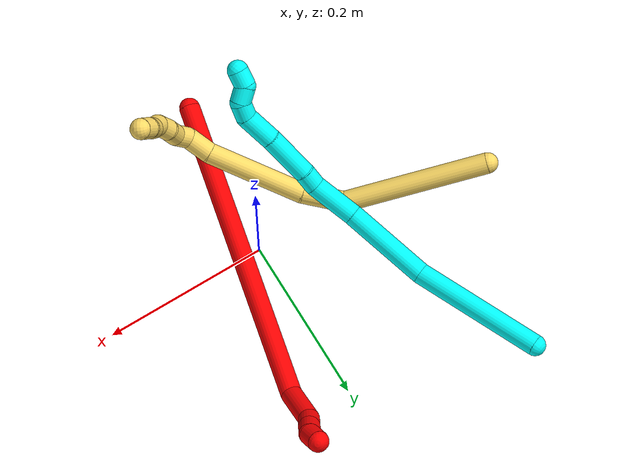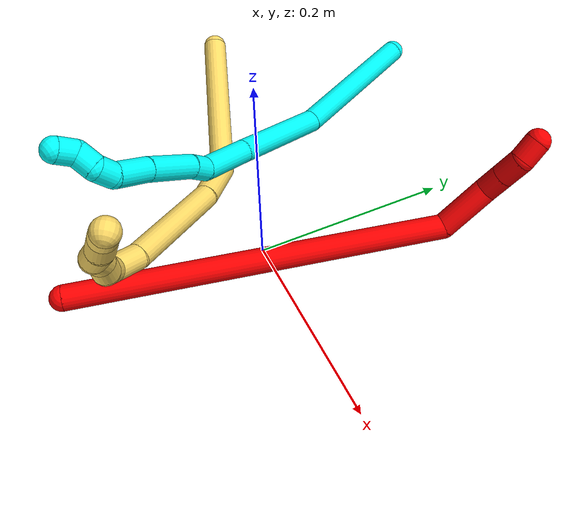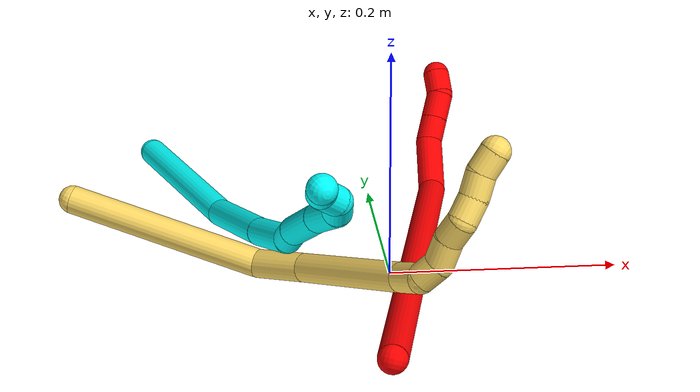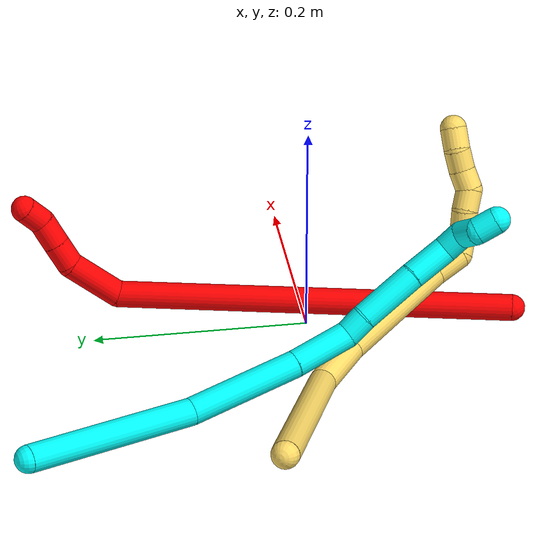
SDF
<sdf version="1.7">
 <world name="default">
  <model name="2">
   <static>0</static>
   <link name="2">
    <collision name="collision-cylinder-e_1_1_4">
     <pose>0.013156 0.167827 0.07993 -1.12632 0.070655 -0.04462</pose>
     <geometry><cylinder><radius>0.0125</radius><length>0.372708</length></cylinder></geometry>
     <surface>
      <friction><ode><mu>1.16</mu><mu2>1.16</mu2><slip1>0</slip1><slip2>0</slip2></ode></friction>
      <contact><ode><kp>1e+06</kp><kd>1</kd><max_vel>0</max_vel><min_depth>0.001</min_depth></ode></contact>
     </surface>
    </collision>
    <visual name="visual-cylinder-e_1_1_4">
     <pose>0.013156 0.167827 0.07993 -1.12632 0.070655 -0.04462</pose>
     <geometry><cylinder><radius>0.0125</radius><length>0.372708</length></cylinder></geometry>
     <material><ambient>1 0 0 1</ambient></material>
    </visual>
    <collision name="collision-cylinder-e_2_4_5">
     <pose>0.020377 0.348355 0.183889 -0.486225 -0.215006 0.053519</pose>
     <geometry><cylinder><radius>0.0125</radius><length>0.055638</length></cylinder></geometry>
     <surface>
      <friction><ode><mu>1.16</mu><mu2>1.16</mu2><slip1>0</slip1><slip2>0</slip2></ode></friction>
      <contact><ode><kp>1e+06</kp><kd>1</kd><max_vel>0</max_vel><min_depth>0.001</min_depth></ode></contact>
     </surface>
    </collision>
    <visual name="visual-cylinder-e_2_4_5">
     <pose>0.020377 0.348355 0.183889 -0.486225 -0.215006 0.053519</pose>
     <geometry><cylinder><radius>0.0125</radius><length>0.055638</length></cylinder></geometry>
     <material><ambient>1 0 0 1</ambient></material>
    </visual>
    <collision name="collision-cylinder-e_3_5_6">
     <pose>0.014413 0.36249 0.219748 -0.120754 -0.002356 0.000142</pose>
     <geometry><cylinder><radius>0.0125</radius><length>0.023833</length></cylinder></geometry>
     <surface>
      <friction><ode><mu>1.16</mu><mu2>1.16</mu2><slip1>0</slip1><slip2>0</slip2></ode></friction>
      <contact><ode><kp>1e+06</kp><kd>1</kd><max_vel>0</max_vel><min_depth>0.001</min_depth></ode></contact>
     </surface>
    </collision>
    <visual name="visual-cylinder-e_3_5_6">
     <pose>0.014413 0.36249 0.219748 -0.120754 -0.002356 0.000142</pose>
     <geometry><cylinder><radius>0.0125</radius><length>0.023833</length></cylinder></geometry>
     <material><ambient>1 0 0 1</ambient></material>
    </visual>
    <collision name="collision-cylinder-e_4_6_7">
     <pose>0.014404 0.365305 0.24414 -0.10936 0.001482 -8.1e-05</pose>
     <geometry><cylinder><radius>0.0125</radius><length>0.025276</length></cylinder></geometry>
     <surface>
      <friction><ode><mu>1.16</mu><mu2>1.16</mu2><slip1>0</slip1><slip2>0</slip2></ode></friction>
      <contact><ode><kp>1e+06</kp><kd>1</kd><max_vel>0</max_vel><min_depth>0.001</min_depth></ode></contact>
     </surface>
    </collision>
    <visual name="visual-cylinder-e_4_6_7">
     <pose>0.014404 0.365305 0.24414 -0.10936 0.001482 -8.1e-05</pose>
     <geometry><cylinder><radius>0.0125</radius><length>0.025276</length></cylinder></geometry>
     <material><ambient>1 0 0 1</ambient></material>
    </visual>
    <collision name="collision-cylinder-e_5_7_2">
     <pose>0.010605 0.370601 0.266558 -0.378264 -0.345557 0.066788</pose>
     <geometry><cylinder><radius>0.0125</radius><length>0.022544</length></cylinder></geometry>
     <surface>
      <friction><ode><mu>1.16</mu><mu2>1.16</mu2><slip1>0</slip1><slip2>0</slip2></ode></friction>
      <contact><ode><kp>1e+06</kp><kd>1</kd><max_vel>0</max_vel><min_depth>0.001</min_depth></ode></contact>
     </surface>
    </collision>
    <visual name="visual-cylinder-e_5_7_2">
     <pose>0.010605 0.370601 0.266558 -0.378264 -0.345557 0.066788</pose>
     <geometry><cylinder><radius>0.0125</radius><length>0.022544</length></cylinder></geometry>
     <material><ambient>1 0 0 1</ambient></material>
    </visual>
    <collision name="collision-sphere-2">
     <pose>0.006786 0.374518 0.276414 0 -0 0</pose>
     <geometry><sphere><radius>0.0125</radius></sphere></geometry>
     <surface>
      <friction><ode><mu>1.16</mu><mu2>1.16</mu2><slip1>0</slip1><slip2>0</slip2></ode></friction>
      <contact><ode><kp>1e+06</kp><kd>1</kd><max_vel>0</max_vel><min_depth>0.001</min_depth></ode></contact>
     </surface>
    </collision>
    <visual name="visual-sphere-2">
     <pose>0.006786 0.374518 0.276414 0 -0 0</pose>
     <geometry><sphere><radius>0.0125</radius></sphere></geometry>
     <material><ambient>1 0 0 1</ambient></material>
    </visual>
    <collision name="collision-sphere-7">
     <pose>0.014423 0.366685 0.256702 0 -0 0</pose>
     <geometry><sphere><radius>0.0125</radius></sphere></geometry>
     <surface>
      <friction><ode><mu>1.16</mu><mu2>1.16</mu2><slip1>0</slip1><slip2>0</slip2></ode></friction>
      <contact><ode><kp>1e+06</kp><kd>1</kd><max_vel>0</max_vel><min_depth>0.001</min_depth></ode></contact>
     </surface>
    </collision>
    <visual name="visual-sphere-7">
     <pose>0.014423 0.366685 0.256702 0 -0 0</pose>
     <geometry><sphere><radius>0.0125</radius></sphere></geometry>
     <material><ambient>1 0 0 1</ambient></material>
    </visual>
    <collision name="collision-sphere-6">
     <pose>0.014385 0.363926 0.231577 0 -0 0</pose>
     <geometry><sphere><radius>0.0125</radius></sphere></geometry>
     <surface>
      <friction><ode><mu>1.16</mu><mu2>1.16</mu2><slip1>0</slip1><slip2>0</slip2></ode></friction>
      <contact><ode><kp>1e+06</kp><kd>1</kd><max_vel>0</max_vel><min_depth>0.001</min_depth></ode></contact>
     </surface>
    </collision>
    <visual name="visual-sphere-6">
     <pose>0.014385 0.363926 0.231577 0 -0 0</pose>
     <geometry><sphere><radius>0.0125</radius></sphere></geometry>
     <material><ambient>1 0 0 1</ambient></material>
    </visual>
    <collision name="collision-sphere-5">
     <pose>0.014441 0.361055 0.207918 0 -0 0</pose>
     <geometry><sphere><radius>0.0125</radius></sphere></geometry>
     <surface>
      <friction><ode><mu>1.16</mu><mu2>1.16</mu2><slip1>0</slip1><slip2>0</slip2></ode></friction>
      <contact><ode><kp>1e+06</kp><kd>1</kd><max_vel>0</max_vel><min_depth>0.001</min_depth></ode></contact>
     </surface>
    </collision>
    <visual name="visual-sphere-5">
     <pose>0.014441 0.361055 0.207918 0 -0 0</pose>
     <geometry><sphere><radius>0.0125</radius></sphere></geometry>
     <material><ambient>1 0 0 1</ambient></material>
    </visual>
    <collision name="collision-sphere-1">
     <geometry><sphere><radius>0.0125</radius></sphere></geometry>
     <surface>
      <friction><ode><mu>1.16</mu><mu2>1.16</mu2><slip1>0</slip1><slip2>0</slip2></ode></friction>
      <contact><ode><kp>1e+06</kp><kd>1</kd><max_vel>0</max_vel><min_depth>0.001</min_depth></ode></contact>
     </surface>
    </collision>
    <visual name="visual-sphere-1">
     <geometry><sphere><radius>0.0125</radius></sphere></geometry>
     <material><ambient>1 0 0 1</ambient></material>
    </visual>
    <collision name="collision-sphere-4">
     <pose>0.026312 0.335654 0.159861 0 -0 0</pose>
     <geometry><sphere><radius>0.0125</radius></sphere></geometry>
     <surface>
      <friction><ode><mu>1.16</mu><mu2>1.16</mu2><slip1>0</slip1><slip2>0</slip2></ode></friction>
      <contact><ode><kp>1e+06</kp><kd>1</kd><max_vel>0</max_vel><min_depth>0.001</min_depth></ode></contact>
     </surface>
    </collision>
    <visual name="visual-sphere-4">
     <pose>0.026312 0.335654 0.159861 0 -0 0</pose>
     <geometry><sphere><radius>0.0125</radius></sphere></geometry>
     <material><ambient>1 0 0 1</ambient></material>
    </visual>
    <inertial>
     <pose>0.013967 0.21632 0.114879 0 -0 0</pose>
     <mass>0.5</mass>
     <inertia>
      <ixx>0.004145</ixx>
      <ixy>0</ixy>
      <ixz>0</ixz>
      <iyy>0.00173</iyy>
      <iyz>0</iyz>
      <izz>-0.004187</izz>
     </inertia>
    </inertial>
   </link>
   <pose>-0.019035 -0.1926 0.011499 -0.427066 0.24132 -0.139647</pose>
  </model>
  <model name="3">
   <static>0</static>
   <link name="3">
    <collision name="collision-cylinder-e_1_1_4">
     <pose>0.000249 0.009169 -0.079318 -3.0265 0.003118 -0.054104</pose>
     <geometry><cylinder><radius>0.0125</radius><length>0.159693</length></cylinder></geometry>
     <surface>
      <friction><ode><mu>1.16</mu><mu2>1.16</mu2><slip1>0</slip1><slip2>0</slip2></ode></friction>
      <contact><ode><kp>1e+06</kp><kd>1</kd><max_vel>0</max_vel><min_depth>0.001</min_depth></ode></contact>
     </surface>
    </collision>
    <visual name="visual-cylinder-e_1_1_4">
     <pose>0.000249 0.009169 -0.079318 -3.0265 0.003118 -0.054104</pose>
     <geometry><cylinder><radius>0.0125</radius><length>0.159693</length></cylinder></geometry>
     <material><ambient>0.003922 1 0.996078 1</ambient></material>
    </visual>
    <collision name="collision-cylinder-e_2_4_5">
     <pose>0.012031 0.016451 -0.209741 3.10468 0.221813 2.8131</pose>
     <geometry><cylinder><radius>0.0125</radius><length>0.104848</length></cylinder></geometry>
     <surface>
      <friction><ode><mu>1.16</mu><mu2>1.16</mu2><slip1>0</slip1><slip2>0</slip2></ode></friction>
      <contact><ode><kp>1e+06</kp><kd>1</kd><max_vel>0</max_vel><min_depth>0.001</min_depth></ode></contact>
     </surface>
    </collision>
    <visual name="visual-cylinder-e_2_4_5">
     <pose>0.012031 0.016451 -0.209741 3.10468 0.221813 2.8131</pose>
     <geometry><cylinder><radius>0.0125</radius><length>0.104848</length></cylinder></geometry>
     <material><ambient>0.003922 1 0.996078 1</ambient></material>
    </visual>
    <collision name="collision-cylinder-e_3_5_6">
     <pose>0.031515 0.015057 -0.287845 -3.12335 0.286342 -3.01518</pose>
     <geometry><cylinder><radius>0.0125</radius><length>0.056301</length></cylinder></geometry>
     <surface>
      <friction><ode><mu>1.16</mu><mu2>1.16</mu2><slip1>0</slip1><slip2>0</slip2></ode></friction>
      <contact><ode><kp>1e+06</kp><kd>1</kd><max_vel>0</max_vel><min_depth>0.001</min_depth></ode></contact>
     </surface>
    </collision>
    <visual name="visual-cylinder-e_3_5_6">
     <pose>0.031515 0.015057 -0.287845 -3.12335 0.286342 -3.01518</pose>
     <geometry><cylinder><radius>0.0125</radius><length>0.056301</length></cylinder></geometry>
     <material><ambient>0.003922 1 0.996078 1</ambient></material>
    </visual>
    <collision name="collision-cylinder-e_4_6_7">
     <pose>0.046554 0.013446 -0.322991 2.88891 0.700115 2.47197</pose>
     <geometry><cylinder><radius>0.0125</radius><length>0.022003</length></cylinder></geometry>
     <surface>
      <friction><ode><mu>1.16</mu><mu2>1.16</mu2><slip1>0</slip1><slip2>0</slip2></ode></friction>
      <contact><ode><kp>1e+06</kp><kd>1</kd><max_vel>0</max_vel><min_depth>0.001</min_depth></ode></contact>
     </surface>
    </collision>
    <visual name="visual-cylinder-e_4_6_7">
     <pose>0.046554 0.013446 -0.322991 2.88891 0.700115 2.47197</pose>
     <geometry><cylinder><radius>0.0125</radius><length>0.022003</length></cylinder></geometry>
     <material><ambient>0.003922 1 0.996078 1</ambient></material>
    </visual>
    <collision name="collision-cylinder-e_5_7_8">
     <pose>0.069086 0.008302 -0.355095 3.01534 0.568948 2.7158</pose>
     <geometry><cylinder><radius>0.0125</radius><length>0.057331</length></cylinder></geometry>
     <surface>
      <friction><ode><mu>1.16</mu><mu2>1.16</mu2><slip1>0</slip1><slip2>0</slip2></ode></friction>
      <contact><ode><kp>1e+06</kp><kd>1</kd><max_vel>0</max_vel><min_depth>0.001</min_depth></ode></contact>
     </surface>
    </collision>
    <visual name="visual-cylinder-e_5_7_8">
     <pose>0.069086 0.008302 -0.355095 3.01534 0.568948 2.7158</pose>
     <geometry><cylinder><radius>0.0125</radius><length>0.057331</length></cylinder></geometry>
     <material><ambient>0.003922 1 0.996078 1</ambient></material>
    </visual>
    <collision name="collision-cylinder-e_6_8_9">
     <pose>0.093943 0.004219 -0.396174 3.08082 0.501915 2.90557</pose>
     <geometry><cylinder><radius>0.0125</radius><length>0.039132</length></cylinder></geometry>
     <surface>
      <friction><ode><mu>1.16</mu><mu2>1.16</mu2><slip1>0</slip1><slip2>0</slip2></ode></friction>
      <contact><ode><kp>1e+06</kp><kd>1</kd><max_vel>0</max_vel><min_depth>0.001</min_depth></ode></contact>
     </surface>
    </collision>
    <visual name="visual-cylinder-e_6_8_9">
     <pose>0.093943 0.004219 -0.396174 3.08082 0.501915 2.90557</pose>
     <geometry><cylinder><radius>0.0125</radius><length>0.039132</length></cylinder></geometry>
     <material><ambient>0.003922 1 0.996078 1</ambient></material>
    </visual>
    <collision name="collision-cylinder-e_7_9_10">
     <pose>0.109996 -0.001171 -0.419538 2.53317 0.717575 1.74759</pose>
     <geometry><cylinder><radius>0.0125</radius><length>0.020196</length></cylinder></geometry>
     <surface>
      <friction><ode><mu>1.16</mu><mu2>1.16</mu2><slip1>0</slip1><slip2>0</slip2></ode></friction>
      <contact><ode><kp>1e+06</kp><kd>1</kd><max_vel>0</max_vel><min_depth>0.001</min_depth></ode></contact>
     </surface>
    </collision>
    <visual name="visual-cylinder-e_7_9_10">
     <pose>0.109996 -0.001171 -0.419538 2.53317 0.717575 1.74759</pose>
     <geometry><cylinder><radius>0.0125</radius><length>0.020196</length></cylinder></geometry>
     <material><ambient>0.003922 1 0.996078 1</ambient></material>
    </visual>
    <collision name="collision-cylinder-e_8_10_11">
     <pose>0.119908 -0.014782 -0.428681 1.87429 0.325137 0.439267</pose>
     <geometry><cylinder><radius>0.0125</radius><length>0.020485</length></cylinder></geometry>
     <surface>
      <friction><ode><mu>1.16</mu><mu2>1.16</mu2><slip1>0</slip1><slip2>0</slip2></ode></friction>
      <contact><ode><kp>1e+06</kp><kd>1</kd><max_vel>0</max_vel><min_depth>0.001</min_depth></ode></contact>
     </surface>
    </collision>
    <visual name="visual-cylinder-e_8_10_11">
     <pose>0.119908 -0.014782 -0.428681 1.87429 0.325137 0.439267</pose>
     <geometry><cylinder><radius>0.0125</radius><length>0.020485</length></cylinder></geometry>
     <material><ambient>0.003922 1 0.996078 1</ambient></material>
    </visual>
    <collision name="collision-cylinder-e_9_11_2">
     <pose>0.127664 -0.028196 -0.439504 2.65885 0.464716 1.53129</pose>
     <geometry><cylinder><radius>0.0125</radius><length>0.020011</length></cylinder></geometry>
     <surface>
      <friction><ode><mu>1.16</mu><mu2>1.16</mu2><slip1>0</slip1><slip2>0</slip2></ode></friction>
      <contact><ode><kp>1e+06</kp><kd>1</kd><max_vel>0</max_vel><min_depth>0.001</min_depth></ode></contact>
     </surface>
    </collision>
    <visual name="visual-cylinder-e_9_11_2">
     <pose>0.127664 -0.028196 -0.439504 2.65885 0.464716 1.53129</pose>
     <geometry><cylinder><radius>0.0125</radius><length>0.020011</length></cylinder></geometry>
     <material><ambient>0.003922 1 0.996078 1</ambient></material>
    </visual>
    <collision name="collision-sphere-2">
     <pose>0.132148 -0.032348 -0.447426 0 -0 0</pose>
     <geometry><sphere><radius>0.0125</radius></sphere></geometry>
     <surface>
      <friction><ode><mu>1.16</mu><mu2>1.16</mu2><slip1>0</slip1><slip2>0</slip2></ode></friction>
      <contact><ode><kp>1e+06</kp><kd>1</kd><max_vel>0</max_vel><min_depth>0.001</min_depth></ode></contact>
     </surface>
    </collision>
    <visual name="visual-sphere-2">
     <pose>0.132148 -0.032348 -0.447426 0 -0 0</pose>
     <geometry><sphere><radius>0.0125</radius></sphere></geometry>
     <material><ambient>0.003922 1 0.996078 1</ambient></material>
    </visual>
    <collision name="collision-sphere-11">
     <pose>0.12318 -0.024044 -0.431581 0 -0 0</pose>
     <geometry><sphere><radius>0.0125</radius></sphere></geometry>
     <surface>
      <friction><ode><mu>1.16</mu><mu2>1.16</mu2><slip1>0</slip1><slip2>0</slip2></ode></friction>
      <contact><ode><kp>1e+06</kp><kd>1</kd><max_vel>0</max_vel><min_depth>0.001</min_depth></ode></contact>
     </surface>
    </collision>
    <visual name="visual-sphere-11">
     <pose>0.12318 -0.024044 -0.431581 0 -0 0</pose>
     <geometry><sphere><radius>0.0125</radius></sphere></geometry>
     <material><ambient>0.003922 1 0.996078 1</ambient></material>
    </visual>
    <collision name="collision-sphere-10">
     <pose>0.116636 -0.005519 -0.42578 0 -0 0</pose>
     <geometry><sphere><radius>0.0125</radius></sphere></geometry>
     <surface>
      <friction><ode><mu>1.16</mu><mu2>1.16</mu2><slip1>0</slip1><slip2>0</slip2></ode></friction>
      <contact><ode><kp>1e+06</kp><kd>1</kd><max_vel>0</max_vel><min_depth>0.001</min_depth></ode></contact>
     </surface>
    </collision>
    <visual name="visual-sphere-10">
     <pose>0.116636 -0.005519 -0.42578 0 -0 0</pose>
     <geometry><sphere><radius>0.0125</radius></sphere></geometry>
     <material><ambient>0.003922 1 0.996078 1</ambient></material>
    </visual>
    <collision name="collision-sphere-9">
     <pose>0.103356 0.003178 -0.413295 0 -0 0</pose>
     <geometry><sphere><radius>0.0125</radius></sphere></geometry>
     <surface>
      <friction><ode><mu>1.16</mu><mu2>1.16</mu2><slip1>0</slip1><slip2>0</slip2></ode></friction>
      <contact><ode><kp>1e+06</kp><kd>1</kd><max_vel>0</max_vel><min_depth>0.001</min_depth></ode></contact>
     </surface>
    </collision>
    <visual name="visual-sphere-9">
     <pose>0.103356 0.003178 -0.413295 0 -0 0</pose>
     <geometry><sphere><radius>0.0125</radius></sphere></geometry>
     <material><ambient>0.003922 1 0.996078 1</ambient></material>
    </visual>
    <collision name="collision-sphere-4">
     <pose>0.000498 0.018339 -0.158636 0 -0 0</pose>
     <geometry><sphere><radius>0.0125</radius></sphere></geometry>
     <surface>
      <friction><ode><mu>1.16</mu><mu2>1.16</mu2><slip1>0</slip1><slip2>0</slip2></ode></friction>
      <contact><ode><kp>1e+06</kp><kd>1</kd><max_vel>0</max_vel><min_depth>0.001</min_depth></ode></contact>
     </surface>
    </collision>
    <visual name="visual-sphere-4">
     <pose>0.000498 0.018339 -0.158636 0 -0 0</pose>
     <geometry><sphere><radius>0.0125</radius></sphere></geometry>
     <material><ambient>0.003922 1 0.996078 1</ambient></material>
    </visual>
    <collision name="collision-sphere-1">
     <geometry><sphere><radius>0.0125</radius></sphere></geometry>
     <surface>
      <friction><ode><mu>1.16</mu><mu2>1.16</mu2><slip1>0</slip1><slip2>0</slip2></ode></friction>
      <contact><ode><kp>1e+06</kp><kd>1</kd><max_vel>0</max_vel><min_depth>0.001</min_depth></ode></contact>
     </surface>
    </collision>
    <visual name="visual-sphere-1">
     <geometry><sphere><radius>0.0125</radius></sphere></geometry>
     <material><ambient>0.003922 1 0.996078 1</ambient></material>
    </visual>
    <collision name="collision-sphere-8">
     <pose>0.08453 0.005261 -0.379053 0 -0 0</pose>
     <geometry><sphere><radius>0.0125</radius></sphere></geometry>
     <surface>
      <friction><ode><mu>1.16</mu><mu2>1.16</mu2><slip1>0</slip1><slip2>0</slip2></ode></friction>
      <contact><ode><kp>1e+06</kp><kd>1</kd><max_vel>0</max_vel><min_depth>0.001</min_depth></ode></contact>
     </surface>
    </collision>
    <visual name="visual-sphere-8">
     <pose>0.08453 0.005261 -0.379053 0 -0 0</pose>
     <geometry><sphere><radius>0.0125</radius></sphere></geometry>
     <material><ambient>0.003922 1 0.996078 1</ambient></material>
    </visual>
    <collision name="collision-sphere-5">
     <pose>0.023564 0.014564 -0.260845 0 -0 0</pose>
     <geometry><sphere><radius>0.0125</radius></sphere></geometry>
     <surface>
      <friction><ode><mu>1.16</mu><mu2>1.16</mu2><slip1>0</slip1><slip2>0</slip2></ode></friction>
      <contact><ode><kp>1e+06</kp><kd>1</kd><max_vel>0</max_vel><min_depth>0.001</min_depth></ode></contact>
     </surface>
    </collision>
    <visual name="visual-sphere-5">
     <pose>0.023564 0.014564 -0.260845 0 -0 0</pose>
     <geometry><sphere><radius>0.0125</radius></sphere></geometry>
     <material><ambient>0.003922 1 0.996078 1</ambient></material>
    </visual>
    <collision name="collision-sphere-6">
     <pose>0.039466 0.01555 -0.314845 0 -0 0</pose>
     <geometry><sphere><radius>0.0125</radius></sphere></geometry>
     <surface>
      <friction><ode><mu>1.16</mu><mu2>1.16</mu2><slip1>0</slip1><slip2>0</slip2></ode></friction>
      <contact><ode><kp>1e+06</kp><kd>1</kd><max_vel>0</max_vel><min_depth>0.001</min_depth></ode></contact>
     </surface>
    </collision>
    <visual name="visual-sphere-6">
     <pose>0.039466 0.01555 -0.314845 0 -0 0</pose>
     <geometry><sphere><radius>0.0125</radius></sphere></geometry>
     <material><ambient>0.003922 1 0.996078 1</ambient></material>
    </visual>
    <collision name="collision-sphere-7">
     <pose>0.053643 0.011343 -0.331138 0 -0 0</pose>
     <geometry><sphere><radius>0.0125</radius></sphere></geometry>
     <surface>
      <friction><ode><mu>1.16</mu><mu2>1.16</mu2><slip1>0</slip1><slip2>0</slip2></ode></friction>
      <contact><ode><kp>1e+06</kp><kd>1</kd><max_vel>0</max_vel><min_depth>0.001</min_depth></ode></contact>
     </surface>
    </collision>
    <visual name="visual-sphere-7">
     <pose>0.053643 0.011343 -0.331138 0 -0 0</pose>
     <geometry><sphere><radius>0.0125</radius></sphere></geometry>
     <material><ambient>0.003922 1 0.996078 1</ambient></material>
    </visual>
    <inertial>
     <pose>0.037939 0.008166 -0.239761 0 -0 0</pose>
     <mass>0.5</mass>
     <inertia>
      <ixx>0.00025</ixx>
      <ixy>0</ixy>
      <ixz>0</ixz>
      <iyy>-0.000186</iyy>
      <iyz>0</iyz>
      <izz>-0.00011</izz>
     </inertia>
    </inertial>
   </link>
   <pose>-0.20976 0.27201 0.024868 -1.39141 -1.30467 0.132995</pose>
  </model>
  <model name="5">
   <static>0</static>
   <link name="5">
    <collision name="collision-cylinder-e_1_1_4">
     <pose>0.015955 0.001708 0.086602 -0.019724 0.182151 -0.001801</pose>
     <geometry><cylinder><radius>0.0125</radius><length>0.176151</length></cylinder></geometry>
     <surface>
      <friction><ode><mu>1.16</mu><mu2>1.16</mu2><slip1>0</slip1><slip2>0</slip2></ode></friction>
      <contact><ode><kp>1e+06</kp><kd>1</kd><max_vel>0</max_vel><min_depth>0.001</min_depth></ode></contact>
     </surface>
    </collision>
    <visual name="visual-cylinder-e_1_1_4">
     <pose>0.015955 0.001708 0.086602 -0.019724 0.182151 -0.001801</pose>
     <geometry><cylinder><radius>0.0125</radius><length>0.176151</length></cylinder></geometry>
     <material><ambient>1 0.858824 0.4 1</ambient></material>
    </visual>
    <collision name="collision-cylinder-e_2_4_5">
     <pose>0.028529 0.01471 0.195849 -0.462599 -0.132763 0.031311</pose>
     <geometry><cylinder><radius>0.0125</radius><length>0.051061</length></cylinder></geometry>
     <surface>
      <friction><ode><mu>1.16</mu><mu2>1.16</mu2><slip1>0</slip1><slip2>0</slip2></ode></friction>
      <contact><ode><kp>1e+06</kp><kd>1</kd><max_vel>0</max_vel><min_depth>0.001</min_depth></ode></contact>
     </surface>
    </collision>
    <visual name="visual-cylinder-e_2_4_5">
     <pose>0.028529 0.01471 0.195849 -0.462599 -0.132763 0.031311</pose>
     <geometry><cylinder><radius>0.0125</radius><length>0.051061</length></cylinder></geometry>
     <material><ambient>1 0.858824 0.4 1</ambient></material>
    </visual>
    <collision name="collision-cylinder-e_3_5_6">
     <pose>0.006942 0.055995 0.266571 -0.557768 -0.310919 0.089695</pose>
     <geometry><cylinder><radius>0.0125</radius><length>0.119035</length></cylinder></geometry>
     <surface>
      <friction><ode><mu>1.16</mu><mu2>1.16</mu2><slip1>0</slip1><slip2>0</slip2></ode></friction>
      <contact><ode><kp>1e+06</kp><kd>1</kd><max_vel>0</max_vel><min_depth>0.001</min_depth></ode></contact>
     </surface>
    </collision>
    <visual name="visual-cylinder-e_3_5_6">
     <pose>0.006942 0.055995 0.266571 -0.557768 -0.310919 0.089695</pose>
     <geometry><cylinder><radius>0.0125</radius><length>0.119035</length></cylinder></geometry>
     <material><ambient>1 0.858824 0.4 1</ambient></material>
    </visual>
    <collision name="collision-cylinder-e_4_6_7">
     <pose>-0.018433 0.094658 0.324942 -0.69995 -0.48921 0.181709</pose>
     <geometry><cylinder><radius>0.0125</radius><length>0.030497</length></cylinder></geometry>
     <surface>
      <friction><ode><mu>1.16</mu><mu2>1.16</mu2><slip1>0</slip1><slip2>0</slip2></ode></friction>
      <contact><ode><kp>1e+06</kp><kd>1</kd><max_vel>0</max_vel><min_depth>0.001</min_depth></ode></contact>
     </surface>
    </collision>
    <visual name="visual-cylinder-e_4_6_7">
     <pose>-0.018433 0.094658 0.324942 -0.69995 -0.48921 0.181709</pose>
     <geometry><cylinder><radius>0.0125</radius><length>0.030497</length></cylinder></geometry>
     <material><ambient>1 0.858824 0.4 1</ambient></material>
    </visual>
    <collision name="collision-cylinder-e_5_7_8">
     <pose>-0.024005 0.112231 0.340126 -1.06862 0.155639 -0.092216</pose>
     <geometry><cylinder><radius>0.0125</radius><length>0.020561</length></cylinder></geometry>
     <surface>
      <friction><ode><mu>1.16</mu><mu2>1.16</mu2><slip1>0</slip1><slip2>0</slip2></ode></friction>
      <contact><ode><kp>1e+06</kp><kd>1</kd><max_vel>0</max_vel><min_depth>0.001</min_depth></ode></contact>
     </surface>
    </collision>
    <visual name="visual-cylinder-e_5_7_8">
     <pose>-0.024005 0.112231 0.340126 -1.06862 0.155639 -0.092216</pose>
     <geometry><cylinder><radius>0.0125</radius><length>0.020561</length></cylinder></geometry>
     <material><ambient>1 0.858824 0.4 1</ambient></material>
    </visual>
    <collision name="collision-cylinder-e_6_8_9">
     <pose>-0.020757 0.132322 0.34552 -1.52563 0.146622 -0.140167</pose>
     <geometry><cylinder><radius>0.0125</radius><length>0.022644</length></cylinder></geometry>
     <surface>
      <friction><ode><mu>1.16</mu><mu2>1.16</mu2><slip1>0</slip1><slip2>0</slip2></ode></friction>
      <contact><ode><kp>1e+06</kp><kd>1</kd><max_vel>0</max_vel><min_depth>0.001</min_depth></ode></contact>
     </surface>
    </collision>
    <visual name="visual-cylinder-e_6_8_9">
     <pose>-0.020757 0.132322 0.34552 -1.52563 0.146622 -0.140167</pose>
     <geometry><cylinder><radius>0.0125</radius><length>0.022644</length></cylinder></geometry>
     <material><ambient>1 0.858824 0.4 1</ambient></material>
    </visual>
    <collision name="collision-cylinder-e_7_9_10">
     <pose>-0.018248 0.153067 0.348856 -1.28286 0.085612 -0.06395</pose>
     <geometry><cylinder><radius>0.0125</radius><length>0.020006</length></cylinder></geometry>
     <surface>
      <friction><ode><mu>1.16</mu><mu2>1.16</mu2><slip1>0</slip1><slip2>0</slip2></ode></friction>
      <contact><ode><kp>1e+06</kp><kd>1</kd><max_vel>0</max_vel><min_depth>0.001</min_depth></ode></contact>
     </surface>
    </collision>
    <visual name="visual-cylinder-e_7_9_10">
     <pose>-0.018248 0.153067 0.348856 -1.28286 0.085612 -0.06395</pose>
     <geometry><cylinder><radius>0.0125</radius><length>0.020006</length></cylinder></geometry>
     <material><ambient>1 0.858824 0.4 1</ambient></material>
    </visual>
    <collision name="collision-cylinder-e_8_10_11">
     <pose>-0.011757 0.170903 0.351835 -1.55283 0.597487 -0.587456</pose>
     <geometry><cylinder><radius>0.0125</radius><length>0.020033</length></cylinder></geometry>
     <surface>
      <friction><ode><mu>1.16</mu><mu2>1.16</mu2><slip1>0</slip1><slip2>0</slip2></ode></friction>
      <contact><ode><kp>1e+06</kp><kd>1</kd><max_vel>0</max_vel><min_depth>0.001</min_depth></ode></contact>
     </surface>
    </collision>
    <visual name="visual-cylinder-e_8_10_11">
     <pose>-0.011757 0.170903 0.351835 -1.55283 0.597487 -0.587456</pose>
     <geometry><cylinder><radius>0.0125</radius><length>0.020033</length></cylinder></geometry>
     <material><ambient>1 0.858824 0.4 1</ambient></material>
    </visual>
    <collision name="collision-cylinder-e_9_11_12">
     <pose>-0.001977 0.188205 0.350795 -1.70174 0.427473 -0.48527</pose>
     <geometry><cylinder><radius>0.0125</radius><length>0.020001</length></cylinder></geometry>
     <surface>
      <friction><ode><mu>1.16</mu><mu2>1.16</mu2><slip1>0</slip1><slip2>0</slip2></ode></friction>
      <contact><ode><kp>1e+06</kp><kd>1</kd><max_vel>0</max_vel><min_depth>0.001</min_depth></ode></contact>
     </surface>
    </collision>
    <visual name="visual-cylinder-e_9_11_12">
     <pose>-0.001977 0.188205 0.350795 -1.70174 0.427473 -0.48527</pose>
     <geometry><cylinder><radius>0.0125</radius><length>0.020001</length></cylinder></geometry>
     <material><ambient>1 0.858824 0.4 1</ambient></material>
    </visual>
    <collision name="collision-cylinder-e_10_12_2">
     <pose>0.006501 0.206087 0.351297 -1.38235 0.447725 -0.37236</pose>
     <geometry><cylinder><radius>0.0125</radius><length>0.020012</length></cylinder></geometry>
     <surface>
      <friction><ode><mu>1.16</mu><mu2>1.16</mu2><slip1>0</slip1><slip2>0</slip2></ode></friction>
      <contact><ode><kp>1e+06</kp><kd>1</kd><max_vel>0</max_vel><min_depth>0.001</min_depth></ode></contact>
     </surface>
    </collision>
    <visual name="visual-cylinder-e_10_12_2">
     <pose>0.006501 0.206087 0.351297 -1.38235 0.447725 -0.37236</pose>
     <geometry><cylinder><radius>0.0125</radius><length>0.020012</length></cylinder></geometry>
     <material><ambient>1 0.858824 0.4 1</ambient></material>
    </visual>
    <collision name="collision-sphere-2">
     <pose>0.010832 0.214947 0.352986 0 -0 0</pose>
     <geometry><sphere><radius>0.0125</radius></sphere></geometry>
     <surface>
      <friction><ode><mu>1.16</mu><mu2>1.16</mu2><slip1>0</slip1><slip2>0</slip2></ode></friction>
      <contact><ode><kp>1e+06</kp><kd>1</kd><max_vel>0</max_vel><min_depth>0.001</min_depth></ode></contact>
     </surface>
    </collision>
    <visual name="visual-sphere-2">
     <pose>0.010832 0.214947 0.352986 0 -0 0</pose>
     <geometry><sphere><radius>0.0125</radius></sphere></geometry>
     <material><ambient>1 0.858824 0.4 1</ambient></material>
    </visual>
    <collision name="collision-sphere-12">
     <pose>0.002169 0.197228 0.349607 0 -0 0</pose>
     <geometry><sphere><radius>0.0125</radius></sphere></geometry>
     <surface>
      <friction><ode><mu>1.16</mu><mu2>1.16</mu2><slip1>0</slip1><slip2>0</slip2></ode></friction>
      <contact><ode><kp>1e+06</kp><kd>1</kd><max_vel>0</max_vel><min_depth>0.001</min_depth></ode></contact>
     </surface>
    </collision>
    <visual name="visual-sphere-12">
     <pose>0.002169 0.197228 0.349607 0 -0 0</pose>
     <geometry><sphere><radius>0.0125</radius></sphere></geometry>
     <material><ambient>1 0.858824 0.4 1</ambient></material>
    </visual>
    <collision name="collision-sphere-11">
     <pose>-0.006123 0.179183 0.351984 0 -0 0</pose>
     <geometry><sphere><radius>0.0125</radius></sphere></geometry>
     <surface>
      <friction><ode><mu>1.16</mu><mu2>1.16</mu2><slip1>0</slip1><slip2>0</slip2></ode></friction>
      <contact><ode><kp>1e+06</kp><kd>1</kd><max_vel>0</max_vel><min_depth>0.001</min_depth></ode></contact>
     </surface>
    </collision>
    <visual name="visual-sphere-11">
     <pose>-0.006123 0.179183 0.351984 0 -0 0</pose>
     <geometry><sphere><radius>0.0125</radius></sphere></geometry>
     <material><ambient>1 0.858824 0.4 1</ambient></material>
    </visual>
    <collision name="collision-sphere-10">
     <pose>-0.017392 0.162623 0.351686 0 -0 0</pose>
     <geometry><sphere><radius>0.0125</radius></sphere></geometry>
     <surface>
      <friction><ode><mu>1.16</mu><mu2>1.16</mu2><slip1>0</slip1><slip2>0</slip2></ode></friction>
      <contact><ode><kp>1e+06</kp><kd>1</kd><max_vel>0</max_vel><min_depth>0.001</min_depth></ode></contact>
     </surface>
    </collision>
    <visual name="visual-sphere-10">
     <pose>-0.017392 0.162623 0.351686 0 -0 0</pose>
     <geometry><sphere><radius>0.0125</radius></sphere></geometry>
     <material><ambient>1 0.858824 0.4 1</ambient></material>
    </visual>
    <collision name="collision-sphere-9">
     <pose>-0.019103 0.143511 0.346026 0 -0 0</pose>
     <geometry><sphere><radius>0.0125</radius></sphere></geometry>
     <surface>
      <friction><ode><mu>1.16</mu><mu2>1.16</mu2><slip1>0</slip1><slip2>0</slip2></ode></friction>
      <contact><ode><kp>1e+06</kp><kd>1</kd><max_vel>0</max_vel><min_depth>0.001</min_depth></ode></contact>
     </surface>
    </collision>
    <visual name="visual-sphere-9">
     <pose>-0.019103 0.143511 0.346026 0 -0 0</pose>
     <geometry><sphere><radius>0.0125</radius></sphere></geometry>
     <material><ambient>1 0.858824 0.4 1</ambient></material>
    </visual>
    <collision name="collision-sphere-4">
     <pose>0.031909 0.003417 0.173203 0 -0 0</pose>
     <geometry><sphere><radius>0.0125</radius></sphere></geometry>
     <surface>
      <friction><ode><mu>1.16</mu><mu2>1.16</mu2><slip1>0</slip1><slip2>0</slip2></ode></friction>
      <contact><ode><kp>1e+06</kp><kd>1</kd><max_vel>0</max_vel><min_depth>0.001</min_depth></ode></contact>
     </surface>
    </collision>
    <visual name="visual-sphere-4">
     <pose>0.031909 0.003417 0.173203 0 -0 0</pose>
     <geometry><sphere><radius>0.0125</radius></sphere></geometry>
     <material><ambient>1 0.858824 0.4 1</ambient></material>
    </visual>
    <collision name="collision-sphere-1">
     <geometry><sphere><radius>0.0125</radius></sphere></geometry>
     <surface>
      <friction><ode><mu>1.16</mu><mu2>1.16</mu2><slip1>0</slip1><slip2>0</slip2></ode></friction>
      <contact><ode><kp>1e+06</kp><kd>1</kd><max_vel>0</max_vel><min_depth>0.001</min_depth></ode></contact>
     </surface>
    </collision>
    <visual name="visual-sphere-1">
     <geometry><sphere><radius>0.0125</radius></sphere></geometry>
     <material><ambient>1 0.858824 0.4 1</ambient></material>
    </visual>
    <collision name="collision-sphere-8">
     <pose>-0.022411 0.121133 0.345014 0 -0 0</pose>
     <geometry><sphere><radius>0.0125</radius></sphere></geometry>
     <surface>
      <friction><ode><mu>1.16</mu><mu2>1.16</mu2><slip1>0</slip1><slip2>0</slip2></ode></friction>
      <contact><ode><kp>1e+06</kp><kd>1</kd><max_vel>0</max_vel><min_depth>0.001</min_depth></ode></contact>
     </surface>
    </collision>
    <visual name="visual-sphere-8">
     <pose>-0.022411 0.121133 0.345014 0 -0 0</pose>
     <geometry><sphere><radius>0.0125</radius></sphere></geometry>
     <material><ambient>1 0.858824 0.4 1</ambient></material>
    </visual>
    <collision name="collision-sphere-5">
     <pose>0.02515 0.026003 0.218495 0 -0 0</pose>
     <geometry><sphere><radius>0.0125</radius></sphere></geometry>
     <surface>
      <friction><ode><mu>1.16</mu><mu2>1.16</mu2><slip1>0</slip1><slip2>0</slip2></ode></friction>
      <contact><ode><kp>1e+06</kp><kd>1</kd><max_vel>0</max_vel><min_depth>0.001</min_depth></ode></contact>
     </surface>
    </collision>
    <visual name="visual-sphere-5">
     <pose>0.02515 0.026003 0.218495 0 -0 0</pose>
     <geometry><sphere><radius>0.0125</radius></sphere></geometry>
     <material><ambient>1 0.858824 0.4 1</ambient></material>
    </visual>
    <collision name="collision-sphere-6">
     <pose>-0.011267 0.085987 0.314647 0 -0 0</pose>
     <geometry><sphere><radius>0.0125</radius></sphere></geometry>
     <surface>
      <friction><ode><mu>1.16</mu><mu2>1.16</mu2><slip1>0</slip1><slip2>0</slip2></ode></friction>
      <contact><ode><kp>1e+06</kp><kd>1</kd><max_vel>0</max_vel><min_depth>0.001</min_depth></ode></contact>
     </surface>
    </collision>
    <visual name="visual-sphere-6">
     <pose>-0.011267 0.085987 0.314647 0 -0 0</pose>
     <geometry><sphere><radius>0.0125</radius></sphere></geometry>
     <material><ambient>1 0.858824 0.4 1</ambient></material>
    </visual>
    <collision name="collision-sphere-7">
     <pose>-0.025598 0.103328 0.335237 0 -0 0</pose>
     <geometry><sphere><radius>0.0125</radius></sphere></geometry>
     <surface>
      <friction><ode><mu>1.16</mu><mu2>1.16</mu2><slip1>0</slip1><slip2>0</slip2></ode></friction>
      <contact><ode><kp>1e+06</kp><kd>1</kd><max_vel>0</max_vel><min_depth>0.001</min_depth></ode></contact>
     </surface>
    </collision>
    <visual name="visual-sphere-7">
     <pose>-0.025598 0.103328 0.335237 0 -0 0</pose>
     <geometry><sphere><radius>0.0125</radius></sphere></geometry>
     <material><ambient>1 0.858824 0.4 1</ambient></material>
    </visual>
    <inertial>
     <pose>0.006115 0.060565 0.219574 0 -0 0</pose>
     <mass>0.5</mass>
     <inertia>
      <ixx>0.000628</ixx>
      <ixy>0</ixy>
      <ixz>0</ixz>
      <iyy>0.000631</iyy>
      <iyz>0</iyz>
      <izz>-0.000109</izz>
     </inertia>
    </inertial>
   </link>
   <pose>-0.275426 0.062677 0.054831 1.8571 -0.084501 1.01036</pose>
  </model>
 </world>
</sdf>
